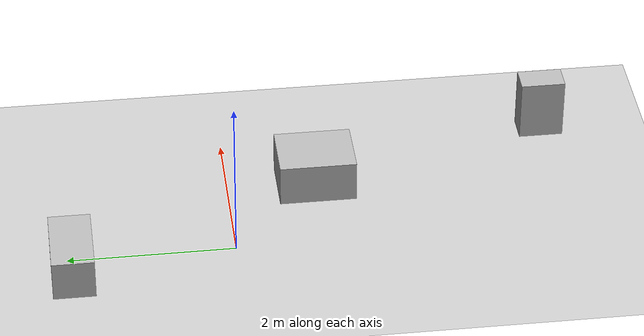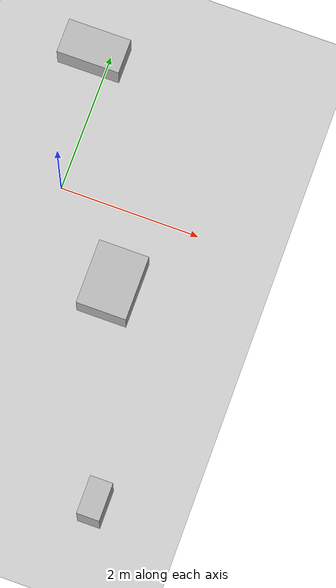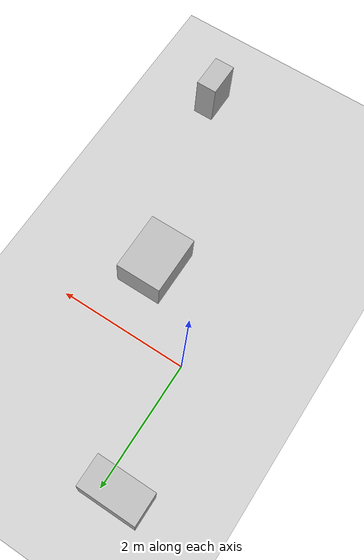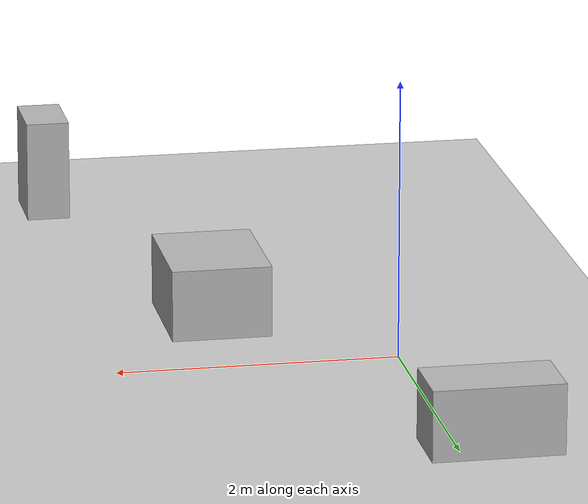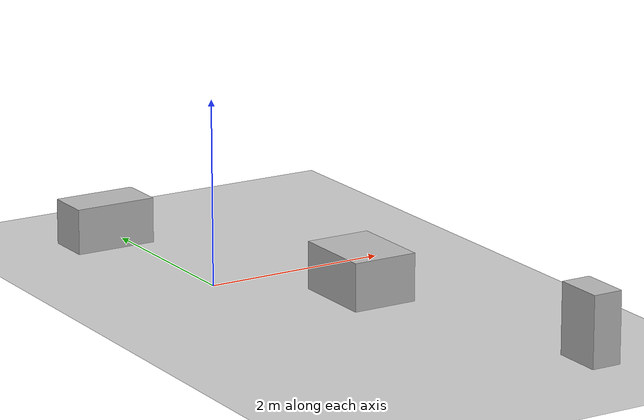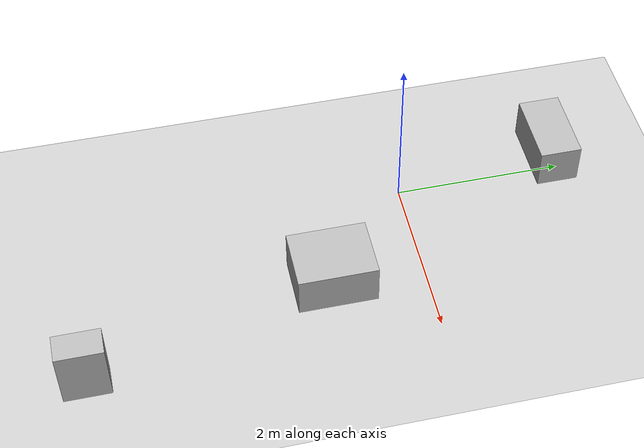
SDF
<?xml version="1.0"?>
<sdf version="1.8">
  <world name="generated_world">
    <include>
      <uri>model://ground_plane</uri>
    </include>
    <include>
      <uri>model://sun</uri>
    </include>

    <model name="box_0">
      <static>true</static>
      <pose>1.957 -3.978 0.378 0 0 0</pose>
      <link name="link">
        <collision name="collision">
          <geometry>
            <box><size>0.322 0.537 0.755</size></box>
          </geometry>
        </collision>
        <visual name="visual">
          <geometry>
            <box><size>0.322 0.537 0.755</size></box>
          </geometry>
        </visual>
      </link>
    </model>

    <model name="box_1">
      <static>true</static>
      <pose>-0.227 1.942 0.249 0 0 0</pose>
      <link name="link">
        <collision name="collision">
          <geometry>
            <box><size>0.906 0.498 0.498</size></box>
          </geometry>
        </collision>
        <visual name="visual">
          <geometry>
            <box><size>0.906 0.498 0.498</size></box>
          </geometry>
        </visual>
      </link>
    </model>

    <model name="box_2">
      <static>true</static>
      <pose>1.146 -1.071 0.259 0 0 0</pose>
      <link name="link">
        <collision name="collision">
          <geometry>
            <box><size>0.716 0.923 0.517</size></box>
          </geometry>
        </collision>
        <visual name="visual">
          <geometry>
            <box><size>0.716 0.923 0.517</size></box>
          </geometry>
        </visual>
      </link>
    </model>

  </world>
</sdf>
